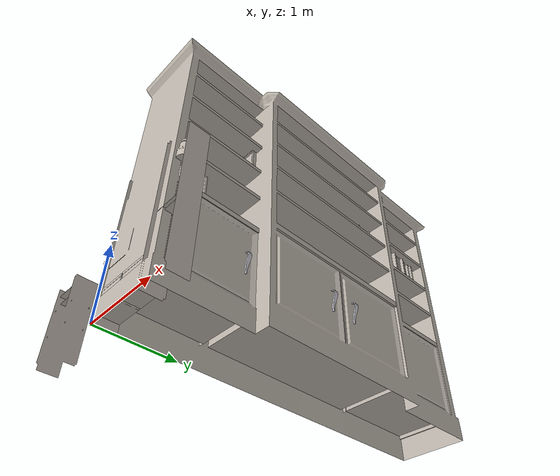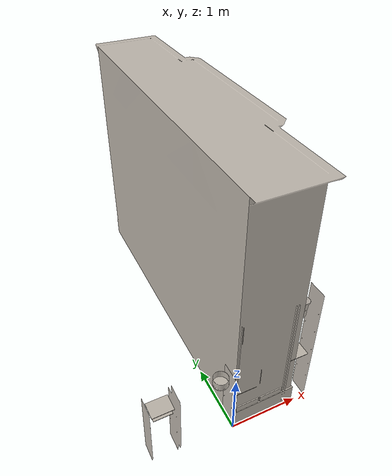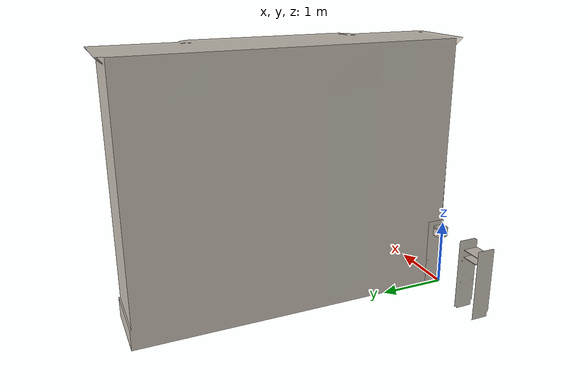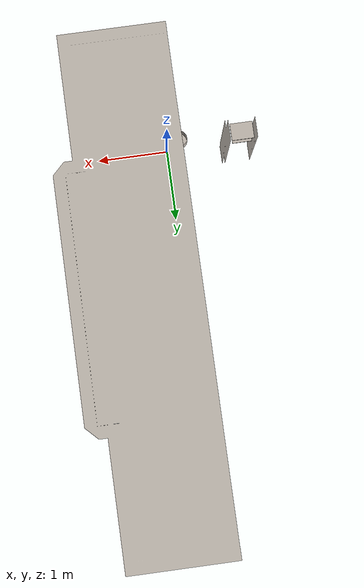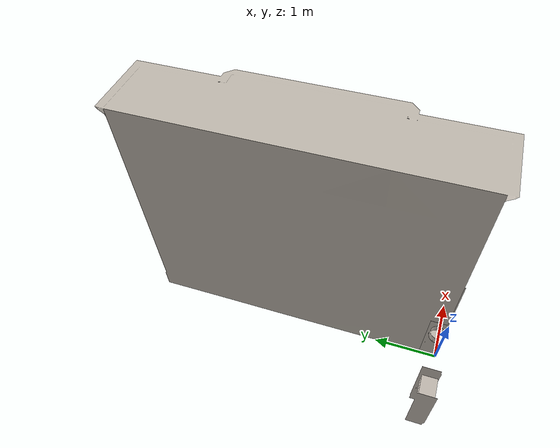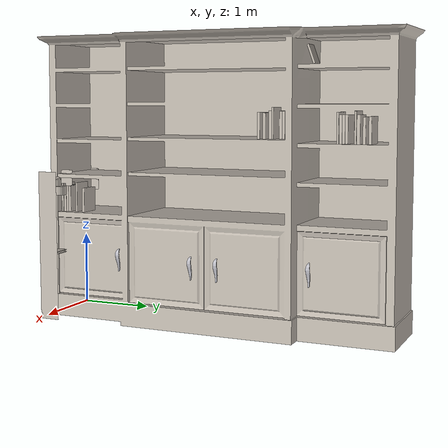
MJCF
<mujoco model="bookshelf">
  <default>
    <default class="visual">
      <geom group="2" type="mesh" contype="0" conaffinity="0"/>
    </default>
    <default class="collision">
      <geom group="3" type="mesh"/>
    </default>
  </default>
  <asset>
    <texture type="2d" name="prop_books_01_mt_Base_Color" file="prop_books_01_mt_Base_Color.png"/>
    <material name="BOOKS" texture="prop_books_01_mt_Base_Color" specular="0.5" shininess="0.171483734"/>
    <texture type="2d" name="shkaff_Mat_albedo" file="shkaff_Mat_albedo.png"/>
    <material name="SHKAFF_MAT" texture="shkaff_Mat_albedo" specular="0.5" shininess="1.0"/>
    <texture type="2d" name="shkaff_silver_albedo" file="shkaff_silver_albedo.png"/>
    <material name="SHKAF_ALBEDO" texture="shkaff_silver_albedo" specular="0.5" shininess="0.557152344"/>
    <texture type="2d" name="cp1" file="cp1.png"/>
    <material name="cp1" texture="cp1" specular="1.0" shininess="0.319999939"/>
    <texture type="2d" name="cp10" file="cp10.png"/>
    <material name="cp2" texture="cp10" specular="1.0" shininess="0.319999939"/>
    <texture type="2d" name="cp2" file="cp2.png"/>
    <material name="cp3" texture="cp2" specular="1.0" shininess="0.319999939"/>
    <texture type="2d" name="cp3" file="cp3.png"/>
    <material name="cp4" texture="cp3" specular="1.0" shininess="0.319999939"/>
    <texture type="2d" name="cp4" file="cp4.png"/>
    <material name="cp5" texture="cp4" specular="1.0" shininess="0.319999939"/>
    <texture type="2d" name="cp5" file="cp5.png"/>
    <material name="cp6" texture="cp5" specular="1.0" shininess="0.319999939"/>
    <texture type="2d" name="cp6" file="cp6.png"/>
    <material name="cp7" texture="cp6" specular="1.0" shininess="0.319999939"/>
    <texture type="2d" name="cp7" file="cp7.png"/>
    <material name="cp8" texture="cp7" specular="1.0" shininess="0.319999939"/>
    <texture type="2d" name="cp8" file="cp8.png"/>
    <material name="cp9" texture="cp8" specular="1.0" shininess="0.319999939"/>
    <mesh file="bookshelf_0.obj"/>
    <mesh file="bookshelf_1.obj"/>
    <mesh file="bookshelf_2.obj"/>
    <mesh file="bookshelf_3.obj"/>
    <mesh file="bookshelf_4.obj"/>
    <mesh file="bookshelf_5.obj"/>
    <mesh file="bookshelf_6.obj"/>
    <mesh file="bookshelf_7.obj"/>
    <mesh file="bookshelf_8.obj"/>
    <mesh file="bookshelf_9.obj"/>
    <mesh file="bookshelf_10.obj"/>
    <mesh file="bookshelf_11.obj"/>
  </asset>
  <worldbody>
    <body name="bookshelf">
      <geom type="mesh" mesh="bookshelf_0" material="cp4" class="visual"/>
      <geom type="mesh" mesh="bookshelf_1" material="cp7" class="visual"/>
      <geom type="mesh" mesh="bookshelf_2" material="cp9" class="visual"/>
      <geom type="mesh" mesh="bookshelf_3" material="cp2" class="visual"/>
      <geom type="mesh" mesh="bookshelf_4" material="cp6" class="visual"/>
      <geom type="mesh" mesh="bookshelf_5" material="cp3" class="visual"/>
      <geom type="mesh" mesh="bookshelf_6" material="cp1" class="visual"/>
      <geom type="mesh" mesh="bookshelf_7" material="cp8" class="visual"/>
      <geom type="mesh" mesh="bookshelf_8" material="cp5" class="visual"/>
      <geom type="mesh" mesh="bookshelf_9" material="BOOKS" class="visual"/>
      <geom type="mesh" mesh="bookshelf_10" material="SHKAF_ALBEDO" class="visual"/>
      <geom type="mesh" mesh="bookshelf_11" material="SHKAFF_MAT" class="visual"/>
      <geom type="mesh" mesh="bookshelf_0" class="collision"/>
      <geom type="mesh" mesh="bookshelf_1" class="collision"/>
      <geom type="mesh" mesh="bookshelf_2" class="collision"/>
      <geom type="mesh" mesh="bookshelf_3" class="collision"/>
      <geom type="mesh" mesh="bookshelf_4" class="collision"/>
      <geom type="mesh" mesh="bookshelf_5" class="collision"/>
      <geom type="mesh" mesh="bookshelf_6" class="collision"/>
      <geom type="mesh" mesh="bookshelf_7" class="collision"/>
      <geom type="mesh" mesh="bookshelf_8" class="collision"/>
      <geom type="mesh" mesh="bookshelf_9" class="collision"/>
      <geom type="mesh" mesh="bookshelf_10" class="collision"/>
      <geom type="mesh" mesh="bookshelf_11" class="collision"/>
    </body>
  </worldbody>
</mujoco>
